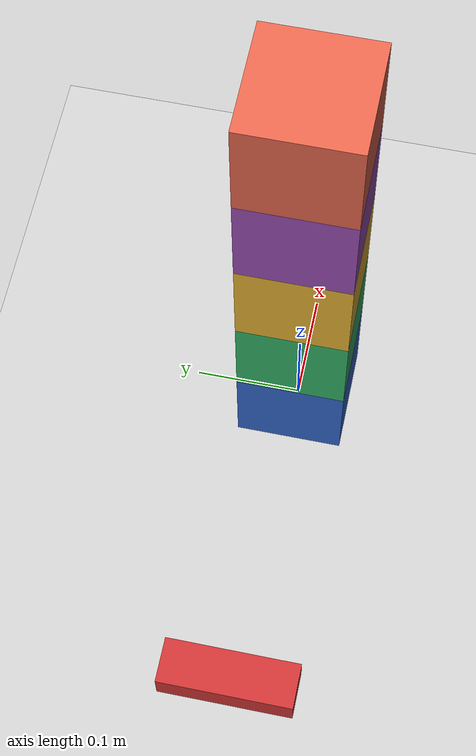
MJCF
<mujoco model="toppling_stack">
  <option timestep="0.002" gravity="0 0 -9.81"/>

  <visual>
    <global offwidth="1280" offheight="720"/>
  </visual>

  <worldbody>
    <light name="sun" pos="0 0 3" dir="0 0 -1" diffuse="0.8 0.8 0.8"/>
    <camera name="side" pos="0.2 -1.6 0.4" xyaxes="1 0 0 0 0.25 1"/>
    <geom name="floor" type="plane" size="3 3 0.1" friction="1 0.005 0.0001" rgba="0.8 0.8 0.8 1"/>

    <body name="pusher" pos="-0.32 0 0.08">
      <joint name="push_slide" type="slide" axis="1 0 0" limited="true" range="0 0.35" damping="0"/>
      <geom name="pusher_head" type="box" size="0.02 0.06 0.015" mass="1" contype="0" conaffinity="0" rgba="0.8 0.2 0.2 1"/>
    </body>

    <body name="block1" pos="0 0 0.05">
      <freejoint name="block1_free"/>
      <geom name="block1_geom" type="box" size="0.05 0.05 0.05" density="500" friction="1 0.005 0.0001" rgba="0.2 0.4 0.8 1"/>
    </body>
    <body name="block2" pos="0 0 0.15">
      <freejoint name="block2_free"/>
      <geom name="block2_geom" type="box" size="0.05 0.05 0.05" density="500" friction="1 0.005 0.0001" rgba="0.2 0.7 0.4 1"/>
    </body>
    <body name="block3" pos="0 0 0.25">
      <freejoint name="block3_free"/>
      <geom name="block3_geom" type="box" size="0.05 0.05 0.05" density="500" friction="1 0.005 0.0001" rgba="0.9 0.7 0.2 1"/>
    </body>
    <body name="block4" pos="0 0 0.35">
      <freejoint name="block4_free"/>
      <geom name="block4_geom" type="box" size="0.05 0.05 0.05" density="500" friction="1 0.005 0.0001" rgba="0.6 0.3 0.7 1"/>
    </body>
    <body name="block5" pos="0 0 0.45">
      <freejoint name="block5_free"/>
      <geom name="block5_geom" type="box" size="0.05 0.05 0.05" density="500" friction="1 0.005 0.0001" rgba="0.9 0.4 0.3 1"/>
    </body>
  </worldbody>

  <contact>
    <pair name="pusher_block1" geom1="pusher_head" geom2="block1_geom" condim="3" friction="0.02 0.02 0.005 0.0001 0.0001"/>
  </contact>

  <actuator>
    <velocity name="push_motor" joint="push_slide" kv="200" forcelimited="true" forcerange="-100 100"/>
  </actuator>

  <keyframe>
    <key name="start" qpos="0  0 0 0.05 1 0 0 0  0 0 0.15 1 0 0 0  0 0 0.25 1 0 0 0  0 0 0.35 1 0 0 0  0 0 0.45 1 0 0 0" qvel="0.25  0 0 0 0 0 0  0 0 0 0 0 0  0 0 0 0 0 0  0 0 0 0 0 0  0 0 0 0 0 0" ctrl="0.25"/>
  </keyframe>
</mujoco>
